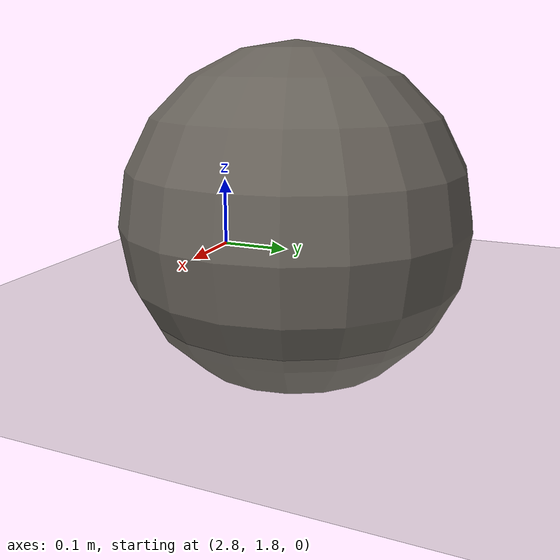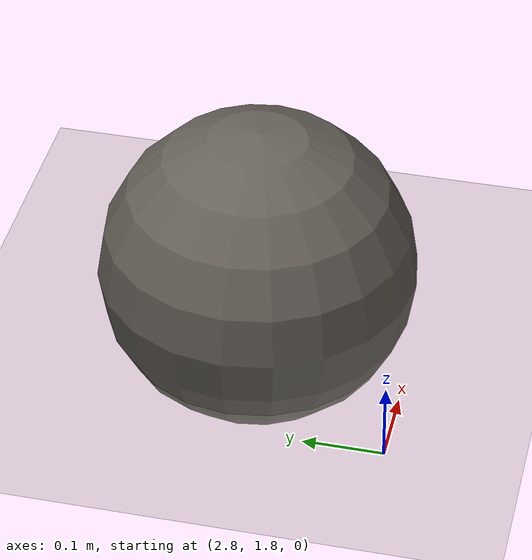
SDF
<?xml version="1.0"?>
<sdf version="1.6">
  <world name="lunar_flat_world">

    <gravity>0 0 -1.62</gravity>

    <physics name="lunar_physics" type="ode">
      <ode>
        <solver>
          <type>quick</type>
          <iters>10</iters>
          <sor>1.3</sor>
        </solver>
      </ode>
      <max_step_size>0.001</max_step_size>
      <real_time_factor>1</real_time_factor>
    </physics>

    <scene>
      <ambient>0.2 0.2 0.2 1</ambient>
      <background>0.01 0.01 0.01 1</background>
      <shadows>true</shadows>
    </scene>

    <light name="sun" type="directional">
      <cast_shadows>true</cast_shadows>
      <pose>0 0 100 0 0 0</pose>
      <diffuse>1.0 0.95 0.85 1</diffuse>
      <specular>0.3 0.3 0.3 1</specular>
      <direction>-0.5 0.1 -0.9</direction>
    </light>

    <model name="lunar_ground">
      <static>true</static>
      <link name="link">
        <collision name="collision">
          <geometry>
            <plane>
              <normal>0 0 1</normal>
              <size>100 100</size>
            </plane>
          </geometry>
          <surface>
            <friction>
              <ode>
                <mu>1.5</mu>
                <mu2>1.5</mu2>
              </ode>
            </friction>
          </surface>
        </collision>
        <visual name="visual">
          <geometry>
            <plane>
              <normal>0 0 1</normal>
              <size>100 100</size>
            </plane>
          </geometry>
          <material>
            <ambient>0.45 0.43 0.40 1</ambient>
            <diffuse>0.55 0.53 0.50 1</diffuse>
            <specular>0.05 0.05 0.05 1</specular>
          </material>
        </visual>
      </link>
    </model>

    <model name="rock_1">
      <static>true</static>
      <pose>3 2 0.1 0 0 0</pose>
      <link name="link">
        <collision name="collision">
          <geometry><sphere><radius>0.2</radius></sphere></geometry>
        </collision>
        <visual name="visual">
          <geometry><sphere><radius>0.2</radius></sphere></geometry>
          <material>
            <ambient>0.4 0.38 0.35 1</ambient>
            <diffuse>0.4 0.38 0.35 1</diffuse>
          </material>
        </visual>
      </link>
    </model>

  </world>
</sdf>
